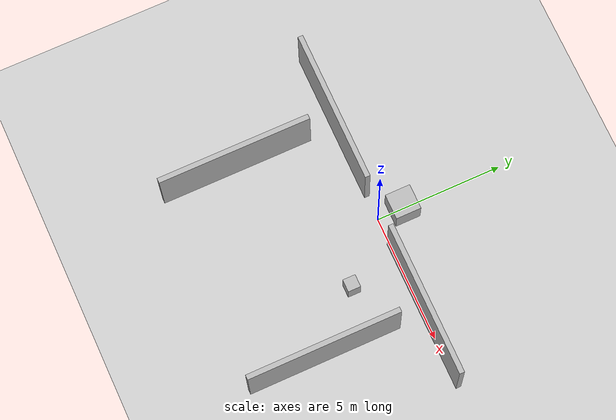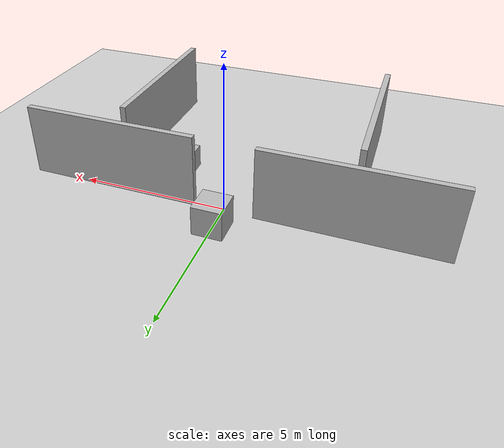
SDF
<?xml version="1.0" ?>
<sdf version="1.6">
  <world name="exploration_world">

    <!-- Light + ground plane -->
    <include>
      <uri>model://sun</uri>
    </include>

    <include>
      <uri>model://ground_plane</uri>
    </include>

    <!-- -----------------------------
         ROOM 1 — left side
         ----------------------------- -->
    <!-- Room 1 Walls -->
    <model name="room1_wall1">
      <static>true</static>
      <link name="wall_link">
        <collision name="collision">
          <geometry>
            <box><size>6 0.2 2.5</size></box>
          </geometry>
        </collision>
        <visual name="visual">
          <geometry>
            <box><size>6 0.2 2.5</size></box>
          </geometry>
        </visual>
      </link>
      <pose>-4 0 1.25 0 0 0</pose>
    </model>

    <model name="room1_wall2">
      <static>true</static>
      <link name="wall_link">
        <collision name="collision">
          <geometry>
            <box><size>6 0.2 2.5</size></box>
          </geometry>
        </collision>
        <visual name="visual">
          <geometry>
            <box><size>6 0.2 2.5</size></box>
          </geometry>
        </visual>
      </link>
      <pose>-4 -4 1.25 0 0 1.57</pose>
    </model>

    <!-- -----------------------------
         ROOM 2 — right side
         ----------------------------- -->
    <!-- Room 2 Walls -->
    <model name="room2_wall1">
      <static>true</static>
      <link name="wall_link">
        <collision name="collision">
          <geometry>
            <box><size>6 0.2 2.5</size></box>
          </geometry>
        </collision>
        <visual name="visual">
          <geometry>
            <box><size>6 0.2 2.5</size></box>
          </geometry>
        </visual>
      </link>
      <pose>4 0 1.25 0 0 0</pose>
    </model>

    <model name="room2_wall2">
      <static>true</static>
      <link name="wall_link">
        <collision name="collision">
          <geometry>
            <box><size>6 0.2 2.5</size></box>
          </geometry>
        </collision>
        <visual name="visual">
          <geometry>
            <box><size>6 0.2 2.5</size></box>
          </geometry>
        </visual>
      </link>
      <pose>4 -4 1.25 0 0 1.57</pose>
    </model>

    <!-- -----------------------------
         Obstacles
         ----------------------------- -->
    <model name="box_obstacle1">
      <static>true</static>
      <link name="link">
        <collision name="collision">
          <geometry><box><size>1 1 1</size></box></geometry>
        </collision>
        <visual name="visual">
          <geometry><box><size>1 1 1</size></box></geometry>
        </visual>
      </link>
      <pose>0 1 0.5 0 0 0</pose>
    </model>

    <model name="box_obstacle2">
      <static>true</static>
      <link name="link">
        <collision name="collision">
          <geometry><box><size>0.5 0.5 0.8</size></box></geometry>
        </collision>
        <visual name="visual">
          <geometry><box><size>0.5 0.5 0.8</size></box></geometry>
        </visual>
      </link>
      <pose>2 -2 0.4 0 0 0</pose>
    </model>

  </world>
</sdf>
